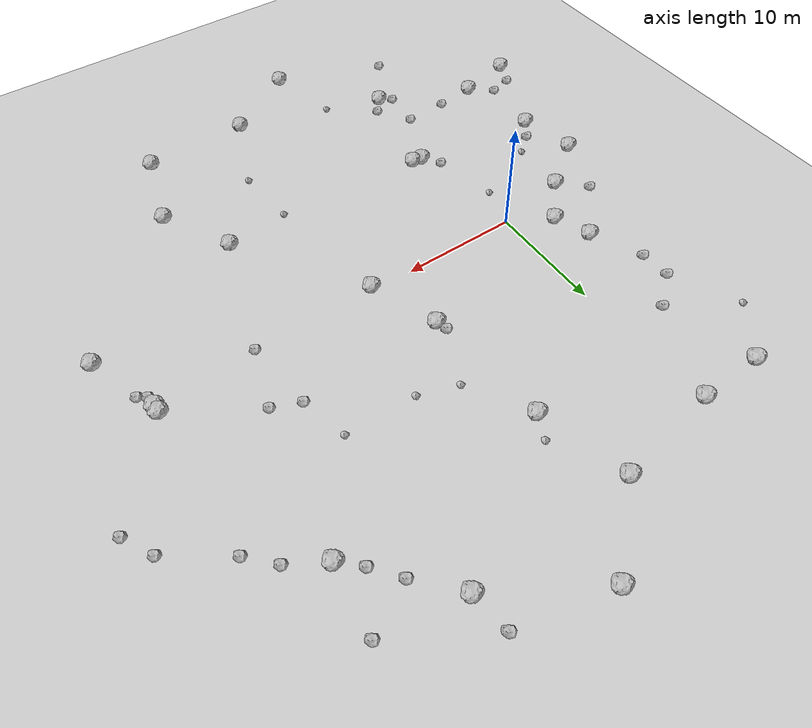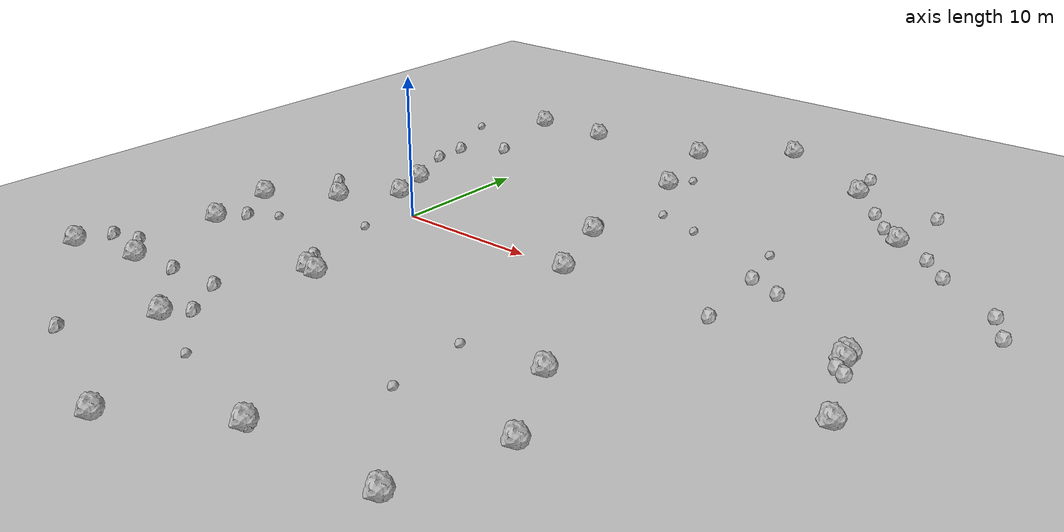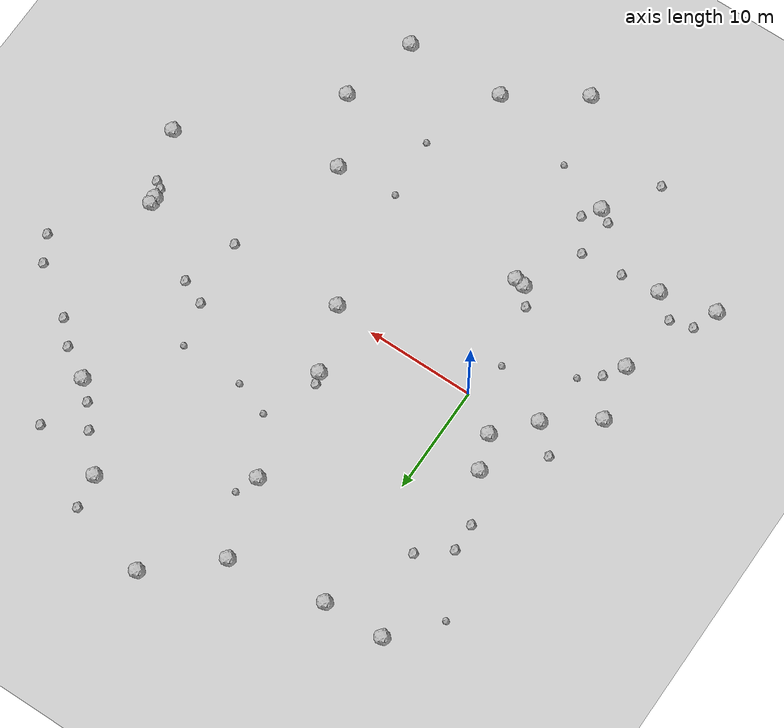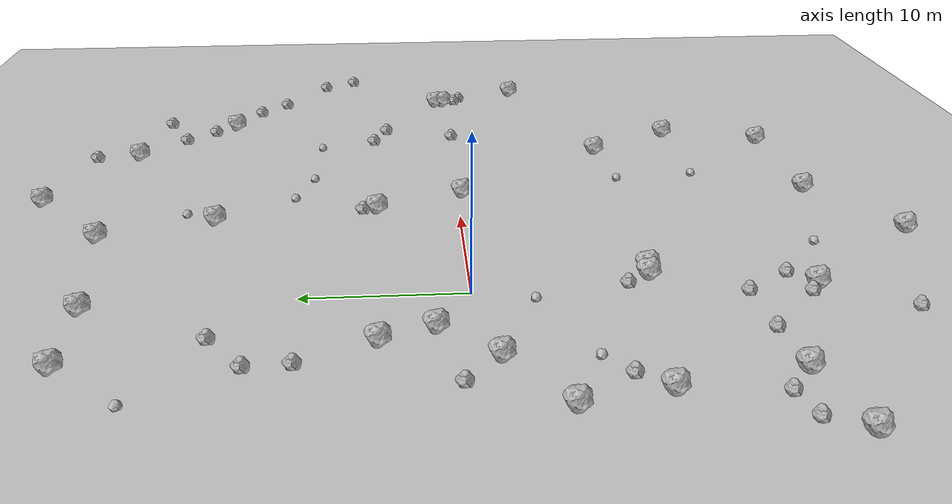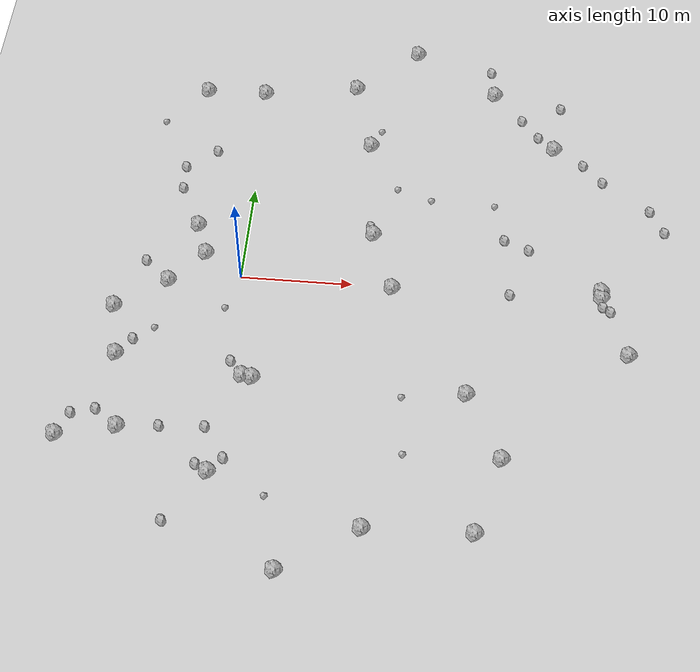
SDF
<sdf version="1.6">
 <world name="default">
  <include><uri>model://custom_ground</uri></include>
  <include><uri>model://sun</uri></include>
  <model name="rock1_0_0">
   <include><uri>model://rock1</uri><pose>13.650225989275278 -0.29930172950556155 0.5 0 0 0</pose></include>
  </model>
  <model name="rock1_0_1">
   <include><uri>model://rock1</uri><pose>6.470369877714106 -28.900130677339764 0.5 0 0 0</pose></include>
  </model>
  <model name="rock1_0_2">
   <include><uri>model://rock1</uri><pose>-6.051476671003007 21.98960825017882 0.5 0 0 0</pose></include>
  </model>
  <model name="rock1_0_3">
   <include><uri>model://rock1</uri><pose>1.4955313147005462 -10.707923523003139 0.5 0 0 0</pose></include>
  </model>
  <model name="rock1_0_4">
   <include><uri>model://rock1</uri><pose>14.025552593010815 28.62202430296899 0.5 0 0 0</pose></include>
  </model>
  <model name="rock1_0_5">
   <include><uri>model://rock1</uri><pose>-0.11234049763513099 -20.403298723354695 0.5 0 0 0</pose></include>
  </model>
  <model name="rock1_0_6">
   <include><uri>model://rock1</uri><pose>34.708040232423095 -5.846915377741627 0.5 0 0 0</pose></include>
  </model>
  <model name="rock1_0_7">
   <include><uri>model://rock1</uri><pose>2.384138095501207 -10.848121749738223 0.5 0 0 0</pose></include>
  </model>
  <model name="rock1_0_8">
   <include><uri>model://rock1</uri><pose>-10.769530515311272 -4.3188686333774235 0.5 0 0 0</pose></include>
  </model>
  <model name="rock1_0_9">
   <include><uri>model://rock1</uri><pose>-0.44071788945190704 22.142696653838613 0.5 0 0 0</pose></include>
  </model>
  <model name="rock1_0_10">
   <include><uri>model://rock1</uri><pose>22.256517643715185 -24.262866543432988 0.5 0 0 0</pose></include>
  </model>
  <model name="rock1_0_11">
   <include><uri>model://rock1</uri><pose>-9.742947296218086 -9.366962822070121 0.5 0 0 0</pose></include>
  </model>
  <model name="rock1_0_12">
   <include><uri>model://rock1</uri><pose>-3.4743447331686923 2.189372394943014 0.5 0 0 0</pose></include>
  </model>
  <model name="rock1_0_13">
   <include><uri>model://rock1</uri><pose>10.374239296926625 16.293325950683624 0.5 0 0 0</pose></include>
  </model>
  <model name="rock1_0_14">
   <include><uri>model://rock1</uri><pose>13.071100419773444 -24.562284802893195 0.5 0 0 0</pose></include>
  </model>
  <model name="rock1_0_15">
   <include><uri>model://rock1</uri><pose>-8.373188225046311 -16.680111939630002 0.5 0 0 0</pose></include>
  </model>
  <model name="rock1_0_16">
   <include><uri>model://rock1</uri><pose>24.13143797165131 -17.16184567884693 0.5 0 0 0</pose></include>
  </model>
  <model name="rock1_0_17">
   <include><uri>model://rock1</uri><pose>8.38158120607875 23.52682480736727 0.5 0 0 0</pose></include>
  </model>
  <model name="rock1_0_18">
   <include><uri>model://rock1</uri><pose>11.4785424422628 5.612082469860738 0.5 0 0 0</pose></include>
  </model>
  <model name="rock1_0_19">
   <include><uri>model://rock1</uri><pose>-4.6170047456006955 5.336666304115418 0.5 0 0 0</pose></include>
  </model>
  <model name="rock1_0_20">
   <include><uri>model://rock1</uri><pose>-13.443942399809446 -17.894186621624915 0.5 0 0 0</pose></include>
  </model>
  <model name="rock1_0_21">
   <include><uri>model://rock1</uri><pose>20.871020209037788 -11.008588797423013 0.5 0 0 0</pose></include>
  </model>
  <model name="rock1_0_22">
   <include><uri>model://rock1</uri><pose>-6.387882122399773 -1.1186908754700582 0.5 0 0 0</pose></include>
  </model>
  <model name="rock1_0_23">
   <include><uri>model://rock1</uri><pose>27.720332761892777 17.2699014581031 0.5 0 0 0</pose></include>
  </model>
  <model name="rock1_0_24">
   <include><uri>model://rock1</uri><pose>32.32307424697748 0.2212717875550041 0.5 0 0 0</pose></include>
  </model>
  <model name="rock1_0_25">
   <include><uri>model://rock1</uri><pose>32.29053552098189 0.8522179948327846 0.5 0 0 0</pose></include>
  </model>
  <model name="rock1_0_26">
   <include><uri>model://rock1</uri><pose>21.829298682119997 23.777914791164363 0.5 0 0 0</pose></include>
  </model>
  <model name="rock2_0_0">
   <include><uri>model://rock2</uri><pose>11.15725056519086 6.573646158386083 0.3 0 0 0</pose></include>
  </model>
  <model name="rock2_0_1">
   <include><uri>model://rock2</uri><pose>-3.222863522812599 -25.1655710220827 0.3 0 0 0</pose></include>
  </model>
  <model name="rock2_0_2">
   <include><uri>model://rock2</uri><pose>0.9783158574562236 -18.93700686355315 0.3 0 0 0</pose></include>
  </model>
  <model name="rock2_0_3">
   <include><uri>model://rock2</uri><pose>38.00971681282219 8.139461638219053 0.3 0 0 0</pose></include>
  </model>
  <model name="rock2_0_4">
   <include><uri>model://rock2</uri><pose>24.15222000325503 -0.08853542941266568 0.3 0 0 0</pose></include>
  </model>
  <model name="rock2_0_5">
   <include><uri>model://rock2</uri><pose>-10.47109525856207 -15.057918090574704 0.3 0 0 0</pose></include>
  </model>
  <model name="rock2_0_6">
   <include><uri>model://rock2</uri><pose>28.243783614300078 22.613781878632032 0.3 0 0 0</pose></include>
  </model>
  <model name="rock2_0_7">
   <include><uri>model://rock2</uri><pose>36.6998323081973 10.527822739566375 0.3 0 0 0</pose></include>
  </model>
  <model name="rock2_0_8">
   <include><uri>model://rock2</uri><pose>-6.702458598908255 9.691832003597426 0.3 0 0 0</pose></include>
  </model>
  <model name="rock2_0_9">
   <include><uri>model://rock2</uri><pose>32.43571590812177 -0.7322970435260174 0.3 0 0 0</pose></include>
  </model>
  <model name="rock2_0_10">
   <include><uri>model://rock2</uri><pose>25.697564200954133 5.054445118860322 0.3 0 0 0</pose></include>
  </model>
  <model name="rock2_0_11">
   <include><uri>model://rock2</uri><pose>26.18037392899447 18.727200074576174 0.3 0 0 0</pose></include>
  </model>
  <model name="rock2_0_12">
   <include><uri>model://rock2</uri><pose>-1.2503471601973573 -19.689552527334953 0.3 0 0 0</pose></include>
  </model>
  <model name="rock2_0_13">
   <include><uri>model://rock2</uri><pose>-8.532828960314083 -7.6289782098849805 0.3 0 0 0</pose></include>
  </model>
  <model name="rock2_0_14">
   <include><uri>model://rock2</uri><pose>23.436280552902097 6.015468812266036 0.3 0 0 0</pose></include>
  </model>
  <model name="rock2_0_15">
   <include><uri>model://rock2</uri><pose>32.311946615088885 13.636608952760142 0.3 0 0 0</pose></include>
  </model>
  <model name="rock2_0_16">
   <include><uri>model://rock2</uri><pose>0.31232989129467725 -9.233840314270775 0.3 0 0 0</pose></include>
  </model>
  <model name="rock2_0_17">
   <include><uri>model://rock2</uri><pose>-4.852559754392141 -16.28374734779837 0.3 0 0 0</pose></include>
  </model>
  <model name="rock2_0_18">
   <include><uri>model://rock2</uri><pose>30.48201620950713 15.57521886139319 0.3 0 0 0</pose></include>
  </model>
  <model name="rock2_0_19">
   <include><uri>model://rock2</uri><pose>-8.736168866903675 0.9776899936427199 0.3 0 0 0</pose></include>
  </model>
  <model name="rock2_0_20">
   <include><uri>model://rock2</uri><pose>21.358419325506247 26.839514266834108 0.3 0 0 0</pose></include>
  </model>
  <model name="rock2_0_21">
   <include><uri>model://rock2</uri><pose>-12.543234135138698 -15.619969791036201 0.3 0 0 0</pose></include>
  </model>
  <model name="rock2_0_22">
   <include><uri>model://rock2</uri><pose>24.56354880401007 20.747793100681157 0.3 0 0 0</pose></include>
  </model>
  <model name="rock2_0_23">
   <include><uri>model://rock2</uri><pose>-4.106004880353966 14.462857156208521 0.3 0 0 0</pose></include>
  </model>
  <model name="rock2_0_24">
   <include><uri>model://rock2</uri><pose>-6.80957345088639 12.2856267400808 0.3 0 0 0</pose></include>
  </model>
  <model name="rock2_0_25">
   <include><uri>model://rock2</uri><pose>33.10681632584372 -1.1975346319104716 0.3 0 0 0</pose></include>
  </model>
  <model name="rock2_0_26">
   <include><uri>model://rock2</uri><pose>-0.9646706073393432 -16.045129426712826 0.3 0 0 0</pose></include>
  </model>
  <model name="rock3_0_0">
   <include><uri>model://rock3</uri><pose>15.846105084855566 -17.302103248056017 0.2 0 0 0</pose></include>
  </model>
  <model name="rock3_0_1">
   <include><uri>model://rock3</uri><pose>13.365855963466672 -24.614964198928213 0.2 0 0 0</pose></include>
  </model>
  <model name="rock3_0_2">
   <include><uri>model://rock3</uri><pose>-0.9718041206249701 -3.645652307467774 0.2 0 0 0</pose></include>
  </model>
  <model name="rock3_0_3">
   <include><uri>model://rock3</uri><pose>4.81942082360257 -22.19877312199054 0.2 0 0 0</pose></include>
  </model>
  <model name="rock3_0_4">
   <include><uri>model://rock3</uri><pose>13.271844744510183 11.223396138383194 0.2 0 0 0</pose></include>
  </model>
  <model name="rock3_0_5">
   <include><uri>model://rock3</uri><pose>11.210654328867516 18.253583351971173 0.2 0 0 0</pose></include>
  </model>
  <model name="rock3_0_6">
   <include><uri>model://rock3</uri><pose>16.488252241089114 10.125997508964552 0.2 0 0 0</pose></include>
  </model>
  <model name="rock3_0_7">
   <include><uri>model://rock3</uri><pose>-6.85189503809756 -6.2919360396956066 0.2 0 0 0</pose></include>
  </model>
  <model name="rock3_0_8">
   <include><uri>model://rock3</uri><pose>22.370494133487348 9.936069347258218 0.2 0 0 0</pose></include>
  </model>
  <model name="rock3_0_9">
   <include><uri>model://rock3</uri><pose>-9.624029550051096 17.788567425545246 0.2 0 0 0</pose></include>
  </model>
  <model name="rock3_0_10">
   <include><uri>model://rock3</uri><pose>15.330598588793933 -11.684042572866463 0.2 0 0 0</pose></include>
  </model>
 </world>
</sdf>
